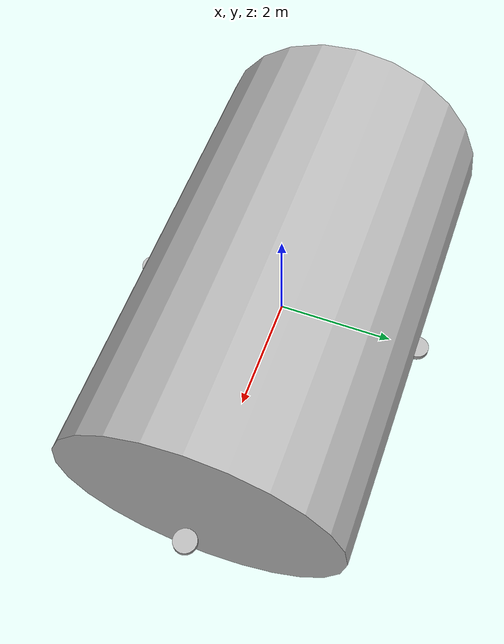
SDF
<?xml version="1.0"?>
<sdf version="1.6">
  <model name="spacestation_module_typeB">
    <link name="base_link">
      <inertial>
        <mass>8000.0</mass>
        <inertia>
          <ixx>300.0</ixx>
          <ixy>0.0</ixy>
          <ixz>0.0</ixz>
          <iyy>300.0</iyy>
          <iyz>0.0</iyz>
          <izz>1000.0</izz>
        </inertia>
      </inertial>
      <collision name="collision">
        <pose>0 0 0 0 1.5708 0</pose>
        <geometry>
          <cylinder>
            <radius>2.5</radius>
            <length>8.0</length>
          </cylinder>
        </geometry>
      </collision>
      <visual name="visual">
        <pose>0 0 0 0 1.5708 0</pose>
        <geometry>
          <cylinder>
            <radius>2.5</radius>
            <length>8.0</length>
          </cylinder>
        </geometry>
      </visual>
    </link>

    <!-- Definition of thruster links -->
    <link name="thruster_x_positive_1">
      <pose>-4.5 1.25 0 0 0 0</pose>
    </link>
    <link name="thruster_x_positive_2">
      <pose>-4.5 -1.25 0 0 0 0</pose>
    </link>
    <link name="thruster_x_negative_1">
      <pose>4.5 1.25 0 0 0 3.14159</pose>
    </link>
    <link name="thruster_x_negative_2">
      <pose>4.5 -1.25 0 0 0 3.14159</pose>
    </link>
    <link name="thruster_y_positive_1">
      <pose>1.25 2.5 0 0 0 1.5708</pose>
    </link>
    <link name="thruster_y_positive_2">
      <pose>-1.25 2.5 0 0 0 1.5708</pose>
    </link>
    <link name="thruster_y_negative_1">
      <pose>1.25 -2.5 0 0 0 -1.5708</pose>
    </link>
    <link name="thruster_y_negative_2">
      <pose>-1.25 -2.5 0 0 0 -1.5708</pose>
    </link>
    <link name="thruster_z_positive_1">
      <pose>1.25 0 2.5 1.5708 0 0</pose>
    </link>
    <link name="thruster_z_positive_2">
      <pose>-1.25 0 2.5 1.5708 0 0</pose>
    </link>
    <link name="thruster_z_negative_1">
      <pose>1.25 0 -2.5 -1.5708 0 0</pose>
    </link>
    <link name="thruster_z_negative_2">
      <pose>-1.25 0 -2.5 -1.5708 0 0</pose>
    </link>

    <!-- Definition of joints and actuators for thrusters -->
    <joint name="thruster_x_positive_joint_1" type="fixed">
      <parent>base_link</parent>
      <child>thruster_x_positive_1</child>
    </joint>
    <joint name="thruster_x_positive_joint_2" type="fixed">
      <parent>base_link</parent>
      <child>thruster_x_positive_2</child>
    </joint>
    <joint name="thruster_x_negative_joint_1" type="fixed">
      <parent>base_link</parent>
      <child>thruster_x_negative_1</child>
    </joint>
    <joint name="thruster_x_negative_joint_2" type="fixed">
      <parent>base_link</parent>
      <child>thruster_x_negative_2</child>
    </joint>
    <joint name="thruster_y_positive_joint_1" type="fixed">
      <parent>base_link</parent>
      <child>thruster_y_positive_1</child>
    </joint>
    <joint name="thruster_y_positive_joint_2" type="fixed">
      <parent>base_link</parent>
      <child>thruster_y_positive_2</child>
    </joint>
    <joint name="thruster_y_negative_joint_1" type="fixed">
      <parent>base_link</parent>
      <child>thruster_y_negative_1</child>
    </joint>
    <joint name="thruster_y_negative_joint_2" type="fixed">
      <parent>base_link</parent>
      <child>thruster_y_negative_2</child>
    </joint>
    <joint name="thruster_z_positive_joint_1" type="fixed">
      <parent>base_link</parent>
      <child>thruster_z_positive_1</child>
    </joint>
    <joint name="thruster_z_positive_joint_2" type="fixed">
      <parent>base_link</parent>
      <child>thruster_z_positive_2</child>
    </joint>
    <joint name="thruster_z_negative_joint_1" type="fixed">
      <parent>base_link</parent>
      <child>thruster_z_negative_1</child>
    </joint>
    <joint name="thruster_z_negative_joint_2" type="fixed">
      <parent>base_link</parent>
      <child>thruster_z_negative_2</child>
    </joint>

    <!-- Actuator definition -->
    <actuator>
      <thruster>
        <force>30.0</force>
      </thruster>
    </actuator>

    <!-- Definition of docking ports -->
    <link name="docking_port_x_positive">
      <pose>4.5 0 0 0 0 0</pose>
      <collision name="collision_docking_port_x_positive">
        <geometry>
          <cylinder>
            <radius>0.2</radius>
            <length>0.1</length>
          </cylinder>
        </geometry>
      </collision>
      <visual name="visual_docking_port_x_positive">
        <geometry>
          <cylinder>
            <radius>0.2</radius>
            <length>0.1</length>
          </cylinder>
        </geometry>
      </visual>
    </link>
    <link name="docking_port_y_positive">
      <pose>0 2.5 0 0 0 1.5708</pose>
      <collision name="collision_docking_port_y_positive">
        <geometry>
          <cylinder>
            <radius>0.2</radius>
            <length>0.1</length>
          </cylinder>
        </geometry>
      </collision>
      <visual name="visual_docking_port_y_positive">
        <geometry>
          <cylinder>
            <radius>0.2</radius>
            <length>0.1</length>
          </cylinder>
        </geometry>
      </visual>
    </link>
    <link name="docking_port_y_negative">
      <pose>0 -2.5 0 0 0 -1.5708</pose>
      <collision name="collision_docking_port_y_negative">
        <geometry>
          <cylinder>
            <radius>0.2</radius>
            <length>0.1</length>
          </cylinder>
        </geometry>
      </collision>
      <visual name="visual_docking_port_y_negative">
        <geometry>
          <cylinder>
            <radius>0.2</radius>
            <length>0.1</length>
          </cylinder>
        </geometry>
      </visual>
    </link>
    <joint name="docking_port_x_positive_joint" type="fixed">
      <parent>base_link</parent>
      <child>docking_port_x_positive</child>
    </joint>
    <joint name="docking_port_y_positive_joint" type="fixed">
      <parent>base_link</parent>
      <child>docking_port_y_positive</child>
    </joint>
    <joint name="docking_port_y_negative_joint" type="fixed">
      <parent>base_link</parent>
      <child>docking_port_y_negative</child>
    </joint>
  </model>
</sdf>
